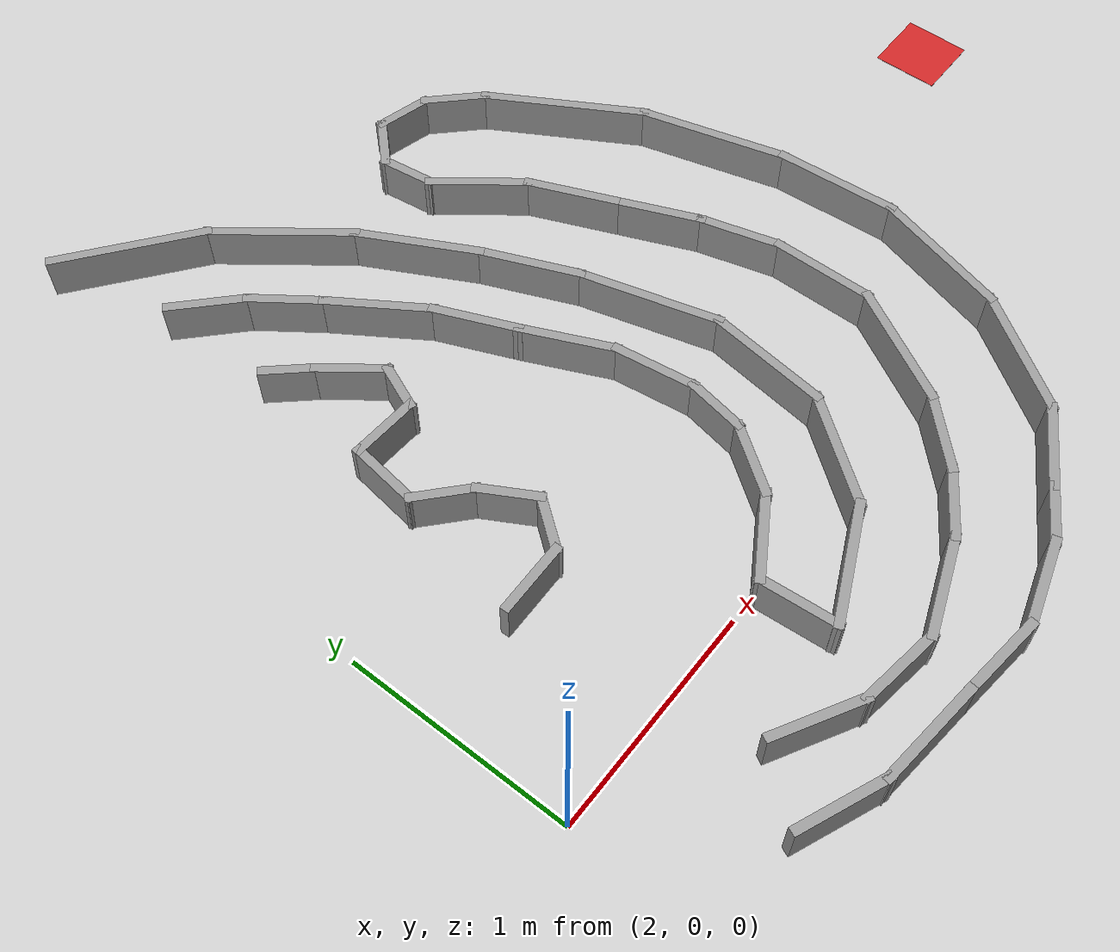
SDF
<sdf version="1.4">
 <world name="default">
  <model name="ground_plane">
   <static>1</static>
   <link name="link">
    <collision name="collision">
     <geometry><plane><normal>0 0 1</normal><size>100 100</size></plane></geometry>
     <surface><friction><ode><mu>100</mu><mu2>50</mu2></ode></friction></surface>
    </collision>
    <visual name="visual">
     <cast_shadows>0</cast_shadows>
     <geometry><plane><normal>0 0 1</normal><size>100 100</size></plane></geometry>
     <material>
      <script><uri>file://media/materials/scripts/gazebo.material</uri><name>Gazebo/Grey</name></script>
     </material>
    </visual>
    <velocity_decay><linear>0</linear><angular>0</angular></velocity_decay>
   </link>
  </model>
  <model name="thymio_maze_large">
   <link name="Wall_101">
    <collision name="Wall_101_Collision">
     <geometry><box><size>0.335749 0.04 0.2</size></box></geometry>
     <pose>0 0 0.1 0 -0 0</pose>
    </collision>
    <visual name="Wall_101_Visual">
     <pose>0 0 0.1 0 -0 0</pose>
     <geometry><box><size>0.335749 0.04 0.2</size></box></geometry>
     <material>
      <script><uri>file://media/materials/scripts/gazebo.material</uri><name>Gazebo/Grey</name></script>
     </material>
    </visual>
    <velocity_decay><linear>0</linear><angular>0</angular></velocity_decay>
    <pose>2.59958 0.63814 0 0 -0 0.02557</pose>
   </link>
   <link name="Wall_102">
    <collision name="Wall_102_Collision">
     <geometry><box><size>0.271621 0.04 0.2</size></box></geometry>
     <pose>0 0 0.1 0 -0 0</pose>
    </collision>
    <visual name="Wall_102_Visual">
     <pose>0 0 0.1 0 -0 0</pose>
     <geometry><box><size>0.271621 0.04 0.2</size></box></geometry>
     <material>
      <script><uri>file://media/materials/scripts/gazebo.material</uri><name>Gazebo/Grey</name></script>
     </material>
    </visual>
    <velocity_decay><linear>0</linear><angular>0</angular></velocity_decay>
    <pose>2.81792 0.733792 0 0 -0 0.916195</pose>
   </link>
   <link name="Wall_103">
    <collision name="Wall_103_Collision">
     <geometry><box><size>0.290702 0.04 0.2</size></box></geometry>
     <pose>0 0 0.1 0 -0 0</pose>
    </collision>
    <visual name="Wall_103_Visual">
     <pose>0 0 0.1 0 -0 0</pose>
     <geometry><box><size>0.290702 0.04 0.2</size></box></geometry>
     <material>
      <script><uri>file://media/materials/scripts/gazebo.material</uri><name>Gazebo/Grey</name></script>
     </material>
    </visual>
    <velocity_decay><linear>0</linear><angular>0</angular></velocity_decay>
    <pose>2.827 0.934926 0 0 -0 2.08302</pose>
   </link>
   <link name="Wall_104">
    <collision name="Wall_104_Collision">
     <geometry><box><size>0.293396 0.04 0.2</size></box></geometry>
     <pose>0 0 0.1 0 -0 0</pose>
    </collision>
    <visual name="Wall_104_Visual">
     <pose>0 0 0.1 0 -0 0</pose>
     <geometry><box><size>0.293396 0.04 0.2</size></box></geometry>
     <material>
      <script><uri>file://media/materials/scripts/gazebo.material</uri><name>Gazebo/Grey</name></script>
     </material>
    </visual>
    <velocity_decay><linear>0</linear><angular>0</angular></velocity_decay>
    <pose>2.67132 1.12915 0 0 -0 2.40792</pose>
   </link>
   <link name="Wall_105">
    <collision name="Wall_105_Collision">
     <geometry><box><size>0.335432 0.04 0.2</size></box></geometry>
     <pose>0 0 0.1 0 -0 0</pose>
    </collision>
    <visual name="Wall_105_Visual">
     <pose>0 0 0.1 0 -0 0</pose>
     <geometry><box><size>0.335432 0.04 0.2</size></box></geometry>
     <material>
      <script><uri>file://media/materials/scripts/gazebo.material</uri><name>Gazebo/Grey</name></script>
     </material>
    </visual>
    <velocity_decay><linear>0</linear><angular>0</angular></velocity_decay>
    <pose>2.59631 1.36024 0 0 -0 1.4399</pose>
   </link>
   <link name="Wall_106">
    <collision name="Wall_106_Collision">
     <geometry><box><size>0.320937 0.04 0.2</size></box></geometry>
     <pose>0 0 0.1 0 -0 0</pose>
    </collision>
    <visual name="Wall_106_Visual">
     <pose>0 0 0.1 0 -0 0</pose>
     <geometry><box><size>0.320937 0.04 0.2</size></box></geometry>
     <material>
      <script><uri>file://media/materials/scripts/gazebo.material</uri><name>Gazebo/Grey</name></script>
     </material>
    </visual>
    <velocity_decay><linear>0</linear><angular>0</angular></velocity_decay>
    <pose>2.75583 1.49919 0 0 0 -0.05102</pose>
   </link>
   <link name="Wall_107">
    <collision name="Wall_107_Collision">
     <geometry><box><size>0.236715 0.04 0.2</size></box></geometry>
     <pose>0 0 0.1 0 -0 0</pose>
    </collision>
    <visual name="Wall_107_Visual">
     <pose>0 0 0.1 0 -0 0</pose>
     <geometry><box><size>0.236715 0.04 0.2</size></box></geometry>
     <material>
      <script><uri>file://media/materials/scripts/gazebo.material</uri><name>Gazebo/Grey</name></script>
     </material>
    </visual>
    <velocity_decay><linear>0</linear><angular>0</angular></velocity_decay>
    <pose>2.93376 1.5829 0 0 -0 1.1781</pose>
   </link>
   <link name="Wall_108">
    <collision name="Wall_108_Collision">
     <geometry><box><size>0.330495 0.04 0.2</size></box></geometry>
     <pose>0 0 0.1 0 -0 0</pose>
    </collision>
    <visual name="Wall_108_Visual">
     <pose>0 0 0.1 0 -0 0</pose>
     <geometry><box><size>0.330495 0.04 0.2</size></box></geometry>
     <material>
      <script><uri>file://media/materials/scripts/gazebo.material</uri><name>Gazebo/Grey</name></script>
     </material>
    </visual>
    <velocity_decay><linear>0</linear><angular>0</angular></velocity_decay>
    <pose>2.88298 1.789 0 0 -0 2.2253</pose>
   </link>
   <link name="Wall_109">
    <collision name="Wall_109_Collision">
     <geometry><box><size>0.250362 0.04 0.2</size></box></geometry>
     <pose>0 0 0.1 0 -0 0</pose>
    </collision>
    <visual name="Wall_109_Visual">
     <pose>0 0 0.1 0 -0 0</pose>
     <geometry><box><size>0.250362 0.04 0.2</size></box></geometry>
     <material>
      <script><uri>file://media/materials/scripts/gazebo.material</uri><name>Gazebo/Grey</name></script>
     </material>
    </visual>
    <velocity_decay><linear>0</linear><angular>0</angular></velocity_decay>
    <pose>2.72372 1.98215 0 0 -0 2.30861</pose>
   </link>
   <link name="Wall_12">
    <collision name="Wall_12_Collision">
     <geometry><box><size>0.696371 0.04 0.2</size></box></geometry>
     <pose>0 0 0.1 0 -0 0</pose>
    </collision>
    <visual name="Wall_12_Visual">
     <pose>0 0 0.1 0 -0 0</pose>
     <geometry><box><size>0.696371 0.04 0.2</size></box></geometry>
     <material>
      <script><uri>file://media/materials/scripts/gazebo.material</uri><name>Gazebo/Grey</name></script>
     </material>
    </visual>
    <velocity_decay><linear>0</linear><angular>0</angular></velocity_decay>
    <pose>2.76942 2.94482 0 0 0 -0.654498</pose>
   </link>
   <link name="Wall_13">
    <collision name="Wall_13_Collision">
     <geometry><box><size>0.665189 0.04 0.2</size></box></geometry>
     <pose>0 0 0.1 0 -0 0</pose>
    </collision>
    <visual name="Wall_13_Visual">
     <pose>0 0 0.1 0 -0 0</pose>
     <geometry><box><size>0.665189 0.04 0.2</size></box></geometry>
     <material>
      <script><uri>file://media/materials/scripts/gazebo.material</uri><name>Gazebo/Grey</name></script>
     </material>
    </visual>
    <velocity_decay><linear>0</linear><angular>0</angular></velocity_decay>
    <pose>3.22022 2.49687 0 0 0 -0.916298</pose>
   </link>
   <link name="Wall_14">
    <collision name="Wall_14_Collision">
     <geometry><box><size>0.577995 0.04 0.2</size></box></geometry>
     <pose>0 0 0.1 0 -0 0</pose>
    </collision>
    <visual name="Wall_14_Visual">
     <pose>0 0 0.1 0 -0 0</pose>
     <geometry><box><size>0.577995 0.04 0.2</size></box></geometry>
     <material>
      <script><uri>file://media/materials/scripts/gazebo.material</uri><name>Gazebo/Grey</name></script>
     </material>
    </visual>
    <velocity_decay><linear>0</linear><angular>0</angular></velocity_decay>
    <pose>3.53507 2.01022 0 0 0 -1.08988</pose>
   </link>
   <link name="Wall_15">
    <collision name="Wall_15_Collision">
     <geometry><box><size>0.479955 0.04 0.2</size></box></geometry>
     <pose>0 0 0.1 0 -0 0</pose>
    </collision>
    <visual name="Wall_15_Visual">
     <pose>0 0 0.1 0 -0 0</pose>
     <geometry><box><size>0.479955 0.04 0.2</size></box></geometry>
     <material>
      <script><uri>file://media/materials/scripts/gazebo.material</uri><name>Gazebo/Grey</name></script>
     </material>
    </visual>
    <velocity_decay><linear>0</linear><angular>0</angular></velocity_decay>
    <pose>3.74369 1.5685 0 0 0 -1.1781</pose>
   </link>
   <link name="Wall_16">
    <collision name="Wall_16_Collision">
     <geometry><box><size>0.65013 0.04 0.2</size></box></geometry>
     <pose>0 0 0.1 0 -0 0</pose>
    </collision>
    <visual name="Wall_16_Visual">
     <pose>0 0 0.1 0 -0 0</pose>
     <geometry><box><size>0.65013 0.04 0.2</size></box></geometry>
     <material>
      <script><uri>file://media/materials/scripts/gazebo.material</uri><name>Gazebo/Grey</name></script>
     </material>
    </visual>
    <velocity_decay><linear>0</linear><angular>0</angular></velocity_decay>
    <pose>3.90683 1.0706 0 0 0 -1.309</pose>
   </link>
   <link name="Wall_17">
    <collision name="Wall_17_Collision">
     <geometry><box><size>0.56326 0.04 0.2</size></box></geometry>
     <pose>0 0 0.1 0 -0 0</pose>
    </collision>
    <visual name="Wall_17_Visual">
     <pose>0 0 0.1 0 -0 0</pose>
     <geometry><box><size>0.56326 0.04 0.2</size></box></geometry>
     <material>
      <script><uri>file://media/materials/scripts/gazebo.material</uri><name>Gazebo/Grey</name></script>
     </material>
    </visual>
    <velocity_decay><linear>0</linear><angular>0</angular></velocity_decay>
    <pose>3.95161 0.516304 0 0 0 -1.7017</pose>
   </link>
   <link name="Wall_18">
    <collision name="Wall_18_Collision">
     <geometry><box><size>0.539122 0.04 0.2</size></box></geometry>
     <pose>0 0 0.1 0 -0 0</pose>
    </collision>
    <visual name="Wall_18_Visual">
     <pose>0 0 0.1 0 -0 0</pose>
     <geometry><box><size>0.539122 0.04 0.2</size></box></geometry>
     <material>
      <script><uri>file://media/materials/scripts/gazebo.material</uri><name>Gazebo/Grey</name></script>
     </material>
    </visual>
    <velocity_decay><linear>0</linear><angular>0</angular></velocity_decay>
    <pose>3.76444 0.05951 0 0 0 -2.23066</pose>
   </link>
   <link name="Wall_19">
    <collision name="Wall_19_Collision">
     <geometry><box><size>0.559261 0.04 0.2</size></box></geometry>
     <pose>0 0 0.1 0 -0 0</pose>
    </collision>
    <visual name="Wall_19_Visual">
     <pose>0 0 0.1 0 -0 0</pose>
     <geometry><box><size>0.559261 0.04 0.2</size></box></geometry>
     <material>
      <script><uri>file://media/materials/scripts/gazebo.material</uri><name>Gazebo/Grey</name></script>
     </material>
    </visual>
    <velocity_decay><linear>0</linear><angular>0</angular></velocity_decay>
    <pose>3.3743 -0.243309 0 0 0 -2.72252</pose>
   </link>
   <link name="Wall_20">
    <collision name="Wall_20_Collision">
     <geometry><box><size>0.368009 0.04 0.2</size></box></geometry>
     <pose>0 0 0.1 0 -0 0</pose>
    </collision>
    <visual name="Wall_20_Visual">
     <pose>0 0 0.1 0 -0 0</pose>
     <geometry><box><size>0.368009 0.04 0.2</size></box></geometry>
     <material>
      <script><uri>file://media/materials/scripts/gazebo.material</uri><name>Gazebo/Grey</name></script>
     </material>
    </visual>
    <velocity_decay><linear>0</linear><angular>0</angular></velocity_decay>
    <pose>3.12477 -0.18542 0 0 -0 1.64626</pose>
   </link>
   <link name="Wall_21">
    <collision name="Wall_21_Collision">
     <geometry><box><size>0.412007 0.04 0.2</size></box></geometry>
     <pose>0 0 0.1 0 -0 0</pose>
    </collision>
    <visual name="Wall_21_Visual">
     <pose>0 0 0.1 0 -0 0</pose>
     <geometry><box><size>0.412007 0.04 0.2</size></box></geometry>
     <material>
      <script><uri>file://media/materials/scripts/gazebo.material</uri><name>Gazebo/Grey</name></script>
     </material>
    </visual>
    <velocity_decay><linear>0</linear><angular>0</angular></velocity_decay>
    <pose>3.27176 0.074045 0 0 -0 0.541856</pose>
   </link>
   <link name="Wall_22">
    <collision name="Wall_22_Collision">
     <geometry><box><size>0.355008 0.04 0.2</size></box></geometry>
     <pose>0 0 0.1 0 -0 0</pose>
    </collision>
    <visual name="Wall_22_Visual">
     <pose>0 0 0.1 0 -0 0</pose>
     <geometry><box><size>0.355008 0.04 0.2</size></box></geometry>
     <material>
      <script><uri>file://media/materials/scripts/gazebo.material</uri><name>Gazebo/Grey</name></script>
     </material>
    </visual>
    <velocity_decay><linear>0</linear><angular>0</angular></velocity_decay>
    <pose>3.5239 0.29725 0 0 -0 0.94091</pose>
   </link>
   <link name="Wall_23">
    <collision name="Wall_23_Collision">
     <geometry><box><size>0.291039 0.04 0.2</size></box></geometry>
     <pose>0 0 0.1 0 -0 0</pose>
    </collision>
    <visual name="Wall_23_Visual">
     <pose>0 0 0.1 0 -0 0</pose>
     <geometry><box><size>0.291039 0.04 0.2</size></box></geometry>
     <material>
      <script><uri>file://media/materials/scripts/gazebo.material</uri><name>Gazebo/Grey</name></script>
     </material>
    </visual>
    <velocity_decay><linear>0</linear><angular>0</angular></velocity_decay>
    <pose>3.63941 0.547973 0 0 -0 1.38871</pose>
   </link>
   <link name="Wall_24">
    <collision name="Wall_24_Collision">
     <geometry><box><size>0.388273 0.04 0.2</size></box></geometry>
     <pose>0 0 0.1 0 -0 0</pose>
    </collision>
    <visual name="Wall_24_Visual">
     <pose>0 0 0.1 0 -0 0</pose>
     <geometry><box><size>0.388273 0.04 0.2</size></box></geometry>
     <material>
      <script><uri>file://media/materials/scripts/gazebo.material</uri><name>Gazebo/Grey</name></script>
     </material>
    </visual>
    <velocity_decay><linear>0</linear><angular>0</angular></velocity_decay>
    <pose>3.63941 0.844064 0 0 -0 1.7017</pose>
   </link>
   <link name="Wall_25">
    <collision name="Wall_25_Collision">
     <geometry><box><size>0.449048 0.04 0.2</size></box></geometry>
     <pose>0 0 0.1 0 -0 0</pose>
    </collision>
    <visual name="Wall_25_Visual">
     <pose>0 0 0.1 0 -0 0</pose>
     <geometry><box><size>0.449048 0.04 0.2</size></box></geometry>
     <material>
      <script><uri>file://media/materials/scripts/gazebo.material</uri><name>Gazebo/Grey</name></script>
     </material>
    </visual>
    <velocity_decay><linear>0</linear><angular>0</angular></velocity_decay>
    <pose>3.53342 1.20363 0 0 -0 1.98985</pose>
   </link>
   <link name="Wall_26">
    <collision name="Wall_26_Collision">
     <geometry><box><size>0.405797 0.04 0.2</size></box></geometry>
     <pose>0 0 0.1 0 -0 0</pose>
    </collision>
    <visual name="Wall_26_Visual">
     <pose>0 0 0.1 0 -0 0</pose>
     <geometry><box><size>0.405797 0.04 0.2</size></box></geometry>
     <material>
      <script><uri>file://media/materials/scripts/gazebo.material</uri><name>Gazebo/Grey</name></script>
     </material>
    </visual>
    <velocity_decay><linear>0</linear><angular>0</angular></velocity_decay>
    <pose>3.38016 1.55953 0 0 -0 1.96349</pose>
   </link>
   <link name="Wall_27">
    <collision name="Wall_27_Collision">
     <geometry><box><size>0.493405 0.04 0.2</size></box></geometry>
     <pose>0 0 0.1 0 -0 0</pose>
    </collision>
    <visual name="Wall_27_Visual">
     <pose>0 0 0.1 0 -0 0</pose>
     <geometry><box><size>0.493405 0.04 0.2</size></box></geometry>
     <material>
      <script><uri>file://media/materials/scripts/gazebo.material</uri><name>Gazebo/Grey</name></script>
     </material>
    </visual>
    <velocity_decay><linear>0</linear><angular>0</angular></velocity_decay>
    <pose>3.18649 1.9185 0 0 -0 2.14783</pose>
   </link>
   <link name="Wall_28">
    <collision name="Wall_28_Collision">
     <geometry><box><size>0.352834 0.04 0.2</size></box></geometry>
     <pose>0 0 0.1 0 -0 0</pose>
    </collision>
    <visual name="Wall_28_Visual">
     <pose>0 0 0.1 0 -0 0</pose>
     <geometry><box><size>0.352834 0.04 0.2</size></box></geometry>
     <material>
      <script><uri>file://media/materials/scripts/gazebo.material</uri><name>Gazebo/Grey</name></script>
     </material>
    </visual>
    <velocity_decay><linear>0</linear><angular>0</angular></velocity_decay>
    <pose>2.97082 2.235 0 0 -0 2.19959</pose>
   </link>
   <link name="Wall_29">
    <collision name="Wall_29_Collision">
     <geometry><box><size>0.36669 0.04 0.2</size></box></geometry>
     <pose>0 0 0.1 0 -0 0</pose>
    </collision>
    <visual name="Wall_29_Visual">
     <pose>0 0 0.1 0 -0 0</pose>
     <geometry><box><size>0.36669 0.04 0.2</size></box></geometry>
     <material>
      <script><uri>file://media/materials/scripts/gazebo.material</uri><name>Gazebo/Grey</name></script>
     </material>
    </visual>
    <velocity_decay><linear>0</linear><angular>0</angular></velocity_decay>
    <pose>2.7604 2.47402 0 0 -0 2.38174</pose>
   </link>
   <link name="Wall_61">
    <collision name="Wall_61_Collision">
     <geometry><box><size>0.417641 0.04 0.2</size></box></geometry>
     <pose>0 0 0.1 0 -0 0</pose>
    </collision>
    <visual name="Wall_61_Visual">
     <pose>0 0 0.1 0 -0 0</pose>
     <geometry><box><size>0.417641 0.04 0.2</size></box></geometry>
     <material>
      <script><uri>file://media/materials/scripts/gazebo.material</uri><name>Gazebo/Grey</name></script>
     </material>
    </visual>
    <velocity_decay><linear>0</linear><angular>0</angular></velocity_decay>
    <pose>2.58408 -0.72084 0 0 0 -0.400028</pose>
   </link>
   <link name="Wall_62">
    <collision name="Wall_62_Collision">
     <geometry><box><size>0.497603 0.04 0.2</size></box></geometry>
     <pose>0 0 0.1 0 -0 0</pose>
    </collision>
    <visual name="Wall_62_Visual">
     <pose>0 0 0.1 0 -0 0</pose>
     <geometry><box><size>0.497603 0.04 0.2</size></box></geometry>
     <material>
      <script><uri>file://media/materials/scripts/gazebo.material</uri><name>Gazebo/Grey</name></script>
     </material>
    </visual>
    <velocity_decay><linear>0</linear><angular>0</angular></velocity_decay>
    <pose>2.98522 -0.821218 0 0 0 -0.117591</pose>
   </link>
   <link name="Wall_63">
    <collision name="Wall_63_Collision">
     <geometry><box><size>0.399397 0.04 0.2</size></box></geometry>
     <pose>0 0 0.1 0 -0 0</pose>
    </collision>
    <visual name="Wall_63_Visual">
     <pose>0 0 0.1 0 -0 0</pose>
     <geometry><box><size>0.399397 0.04 0.2</size></box></geometry>
     <material>
      <script><uri>file://media/materials/scripts/gazebo.material</uri><name>Gazebo/Grey</name></script>
     </material>
    </visual>
    <velocity_decay><linear>0</linear><angular>0</angular></velocity_decay>
    <pose>3.3907 -0.870745 0 0 0 -0.126573</pose>
   </link>
   <link name="Wall_64">
    <collision name="Wall_64_Collision">
     <geometry><box><size>0.409355 0.04 0.2</size></box></geometry>
     <pose>0 0 0.1 0 -0 0</pose>
    </collision>
    <visual name="Wall_64_Visual">
     <pose>0 0 0.1 0 -0 0</pose>
     <geometry><box><size>0.409355 0.04 0.2</size></box></geometry>
     <material>
      <script><uri>file://media/materials/scripts/gazebo.material</uri><name>Gazebo/Grey</name></script>
     </material>
    </visual>
    <velocity_decay><linear>0</linear><angular>0</angular></velocity_decay>
    <pose>3.74711 -0.84477 0 0 -0 0.266634</pose>
   </link>
   <link name="Wall_65">
    <collision name="Wall_65_Collision">
     <geometry><box><size>0.280122 0.04 0.2</size></box></geometry>
     <pose>0 0 0.1 0 -0 0</pose>
    </collision>
    <visual name="Wall_65_Visual">
     <pose>0 0 0.1 0 -0 0</pose>
     <geometry><box><size>0.280122 0.04 0.2</size></box></geometry>
     <material>
      <script><uri>file://media/materials/scripts/gazebo.material</uri><name>Gazebo/Grey</name></script>
     </material>
    </visual>
    <velocity_decay><linear>0</linear><angular>0</angular></velocity_decay>
    <pose>4.02924 -0.736079 0 0 -0 0.523599</pose>
   </link>
   <link name="Wall_66">
    <collision name="Wall_66_Collision">
     <geometry><box><size>0.405983 0.04 0.2</size></box></geometry>
     <pose>0 0 0.1 0 -0 0</pose>
    </collision>
    <visual name="Wall_66_Visual">
     <pose>0 0 0.1 0 -0 0</pose>
     <geometry><box><size>0.405983 0.04 0.2</size></box></geometry>
     <material>
      <script><uri>file://media/materials/scripts/gazebo.material</uri><name>Gazebo/Grey</name></script>
     </material>
    </visual>
    <velocity_decay><linear>0</linear><angular>0</angular></velocity_decay>
    <pose>4.29169 -0.584553 0 0 -0 0.523599</pose>
   </link>
   <link name="Wall_67">
    <collision name="Wall_67_Collision">
     <geometry><box><size>0.596122 0.04 0.2</size></box></geometry>
     <pose>0 0 0.1 0 -0 0</pose>
    </collision>
    <visual name="Wall_67_Visual">
     <pose>0 0 0.1 0 -0 0</pose>
     <geometry><box><size>0.596122 0.04 0.2</size></box></geometry>
     <material>
      <script><uri>file://media/materials/scripts/gazebo.material</uri><name>Gazebo/Grey</name></script>
     </material>
    </visual>
    <velocity_decay><linear>0</linear><angular>0</angular></velocity_decay>
    <pose>4.60886 -0.26473 0 0 -0 0.963407</pose>
   </link>
   <link name="Wall_68">
    <collision name="Wall_68_Collision">
     <geometry><box><size>0.639024 0.04 0.2</size></box></geometry>
     <pose>0 0 0.1 0 -0 0</pose>
    </collision>
    <visual name="Wall_68_Visual">
     <pose>0 0 0.1 0 -0 0</pose>
     <geometry><box><size>0.639024 0.04 0.2</size></box></geometry>
     <material>
      <script><uri>file://media/materials/scripts/gazebo.material</uri><name>Gazebo/Grey</name></script>
     </material>
    </visual>
    <velocity_decay><linear>0</linear><angular>0</angular></velocity_decay>
    <pose>4.8486 0.251937 0 0 -0 1.2968</pose>
   </link>
   <link name="Wall_69">
    <collision name="Wall_69_Collision">
     <geometry><box><size>0.571035 0.04 0.2</size></box></geometry>
     <pose>0 0 0.1 0 -0 0</pose>
    </collision>
    <visual name="Wall_69_Visual">
     <pose>0 0 0.1 0 -0 0</pose>
     <geometry><box><size>0.571035 0.04 0.2</size></box></geometry>
     <material>
      <script><uri>file://media/materials/scripts/gazebo.material</uri><name>Gazebo/Grey</name></script>
     </material>
    </visual>
    <velocity_decay><linear>0</linear><angular>0</angular></velocity_decay>
    <pose>4.91228 0.804926 0 0 -0 1.63631</pose>
   </link>
   <link name="Wall_70">
    <collision name="Wall_70_Collision">
     <geometry><box><size>0.697276 0.04 0.2</size></box></geometry>
     <pose>0 0 0.1 0 -0 0</pose>
    </collision>
    <visual name="Wall_70_Visual">
     <pose>0 0 0.1 0 -0 0</pose>
     <geometry><box><size>0.697276 0.04 0.2</size></box></geometry>
     <material>
      <script><uri>file://media/materials/scripts/gazebo.material</uri><name>Gazebo/Grey</name></script>
     </material>
    </visual>
    <velocity_decay><linear>0</linear><angular>0</angular></velocity_decay>
    <pose>4.80986 1.38702 0 0 -0 1.8326</pose>
   </link>
   <link name="Wall_71">
    <collision name="Wall_71_Collision">
     <geometry><box><size>0.758261 0.04 0.2</size></box></geometry>
     <pose>0 0 0.1 0 -0 0</pose>
    </collision>
    <visual name="Wall_71_Visual">
     <pose>0 0 0.1 0 -0 0</pose>
     <geometry><box><size>0.758261 0.04 0.2</size></box></geometry>
     <material>
      <script><uri>file://media/materials/scripts/gazebo.material</uri><name>Gazebo/Grey</name></script>
     </material>
    </visual>
    <velocity_decay><linear>0</linear><angular>0</angular></velocity_decay>
    <pose>4.54523 2.01547 0 0 -0 2.0944</pose>
   </link>
   <link name="Wall_72">
    <collision name="Wall_72_Collision">
     <geometry><box><size>0.311999 0.04 0.2</size></box></geometry>
     <pose>0 0 0.1 0 -0 0</pose>
    </collision>
    <visual name="Wall_72_Visual">
     <pose>0 0 0.1 0 -0 0</pose>
     <geometry><box><size>0.311999 0.04 0.2</size></box></geometry>
     <material>
      <script><uri>file://media/materials/scripts/gazebo.material</uri><name>Gazebo/Grey</name></script>
     </material>
    </visual>
    <velocity_decay><linear>0</linear><angular>0</angular></velocity_decay>
    <pose>4.2695 2.42265 0 0 -0 2.35619</pose>
   </link>
   <link name="Wall_73">
    <collision name="Wall_73_Collision">
     <geometry><box><size>0.273627 0.04 0.2</size></box></geometry>
     <pose>0 0 0.1 0 -0 0</pose>
    </collision>
    <visual name="Wall_73_Visual">
     <pose>0 0 0.1 0 -0 0</pose>
     <geometry><box><size>0.273627 0.04 0.2</size></box></geometry>
     <material>
      <script><uri>file://media/materials/scripts/gazebo.material</uri><name>Gazebo/Grey</name></script>
     </material>
    </visual>
    <velocity_decay><linear>0</linear><angular>0</angular></velocity_decay>
    <pose>4.05999 2.54707 0 0 -0 2.89729</pose>
   </link>
   <link name="Wall_74">
    <collision name="Wall_74_Collision">
     <geometry><box><size>0.260603 0.04 0.2</size></box></geometry>
     <pose>0 0 0.1 0 -0 0</pose>
    </collision>
    <visual name="Wall_74_Visual">
     <pose>0 0 0.1 0 -0 0</pose>
     <geometry><box><size>0.260603 0.04 0.2</size></box></geometry>
     <material>
      <script><uri>file://media/materials/scripts/gazebo.material</uri><name>Gazebo/Grey</name></script>
     </material>
    </visual>
    <velocity_decay><linear>0</linear><angular>0</angular></velocity_decay>
    <pose>3.86995 2.49606 0 0 0 -2.33967</pose>
   </link>
   <link name="Wall_75">
    <collision name="Wall_75_Collision">
     <geometry><box><size>0.268598 0.04 0.2</size></box></geometry>
     <pose>0 0 0.1 0 -0 0</pose>
    </collision>
    <visual name="Wall_75_Visual">
     <pose>0 0 0.1 0 -0 0</pose>
     <geometry><box><size>0.268598 0.04 0.2</size></box></geometry>
     <material>
      <script><uri>file://media/materials/scripts/gazebo.material</uri><name>Gazebo/Grey</name></script>
     </material>
    </visual>
    <velocity_decay><linear>0</linear><angular>0</angular></velocity_decay>
    <pose>3.80824 2.30347 0 0 0 -1.43931</pose>
   </link>
   <link name="Wall_76">
    <collision name="Wall_76_Collision">
     <geometry><box><size>0.468968 0.04 0.2</size></box></geometry>
     <pose>0 0 0.1 0 -0 0</pose>
    </collision>
    <visual name="Wall_76_Visual">
     <pose>0 0 0.1 0 -0 0</pose>
     <geometry><box><size>0.468968 0.04 0.2</size></box></geometry>
     <material>
      <script><uri>file://media/materials/scripts/gazebo.material</uri><name>Gazebo/Grey</name></script>
     </material>
    </visual>
    <velocity_decay><linear>0</linear><angular>0</angular></velocity_decay>
    <pose>3.9538 2.02 0 0 0 -0.916298</pose>
   </link>
   <link name="Wall_77">
    <collision name="Wall_77_Collision">
     <geometry><box><size>0.42604 0.04 0.2</size></box></geometry>
     <pose>0 0 0.1 0 -0 0</pose>
    </collision>
    <visual name="Wall_77_Visual">
     <pose>0 0 0.1 0 -0 0</pose>
     <geometry><box><size>0.42604 0.04 0.2</size></box></geometry>
     <material>
      <script><uri>file://media/materials/scripts/gazebo.material</uri><name>Gazebo/Grey</name></script>
     </material>
    </visual>
    <velocity_decay><linear>0</linear><angular>0</angular></velocity_decay>
    <pose>4.15823 1.67151 0 0 0 -1.1781</pose>
   </link>
   <link name="Wall_78">
    <collision name="Wall_78_Collision">
     <geometry><box><size>0.417829 0.04 0.2</size></box></geometry>
     <pose>0 0 0.1 0 -0 0</pose>
    </collision>
    <visual name="Wall_78_Visual">
     <pose>0 0 0.1 0 -0 0</pose>
     <geometry><box><size>0.417829 0.04 0.2</size></box></geometry>
     <material>
      <script><uri>file://media/materials/scripts/gazebo.material</uri><name>Gazebo/Grey</name></script>
     </material>
    </visual>
    <velocity_decay><linear>0</linear><angular>0</angular></velocity_decay>
    <pose>4.30439 1.31865 0 0 0 -1.1781</pose>
   </link>
   <link name="Wall_79">
    <collision name="Wall_79_Collision">
     <geometry><box><size>0.391414 0.04 0.2</size></box></geometry>
     <pose>0 0 0.1 0 -0 0</pose>
    </collision>
    <visual name="Wall_79_Visual">
     <pose>0 0 0.1 0 -0 0</pose>
     <geometry><box><size>0.391414 0.04 0.2</size></box></geometry>
     <material>
      <script><uri>file://media/materials/scripts/gazebo.material</uri><name>Gazebo/Grey</name></script>
     </material>
    </visual>
    <velocity_decay><linear>0</linear><angular>0</angular></velocity_decay>
    <pose>4.42216 0.974393 0 0 0 -1.309</pose>
   </link>
   <link name="Wall_80">
    <collision name="Wall_80_Collision">
     <geometry><box><size>0.475343 0.04 0.2</size></box></geometry>
     <pose>0 0 0.1 0 -0 0</pose>
    </collision>
    <visual name="Wall_80_Visual">
     <pose>0 0 0.1 0 -0 0</pose>
     <geometry><box><size>0.475343 0.04 0.2</size></box></geometry>
     <material>
      <script><uri>file://media/materials/scripts/gazebo.material</uri><name>Gazebo/Grey</name></script>
     </material>
    </visual>
    <velocity_decay><linear>0</linear><angular>0</angular></velocity_decay>
    <pose>4.46764 0.587002 0 0 0 -1.5708</pose>
   </link>
   <link name="Wall_81">
    <collision name="Wall_81_Collision">
     <geometry><box><size>0.576301 0.04 0.2</size></box></geometry>
     <pose>0 0 0.1 0 -0 0</pose>
    </collision>
    <visual name="Wall_81_Visual">
     <pose>0 0 0.1 0 -0 0</pose>
     <geometry><box><size>0.576301 0.04 0.2</size></box></geometry>
     <material>
      <script><uri>file://media/materials/scripts/gazebo.material</uri><name>Gazebo/Grey</name></script>
     </material>
    </visual>
    <velocity_decay><linear>0</linear><angular>0</angular></velocity_decay>
    <pose>4.33476 0.136419 0 0 0 -2.08926</pose>
   </link>
   <link name="Wall_82">
    <collision name="Wall_82_Collision">
     <geometry><box><size>0.376384 0.04 0.2</size></box></geometry>
     <pose>0 0 0.1 0 -0 0</pose>
    </collision>
    <visual name="Wall_82_Visual">
     <pose>0 0 0.1 0 -0 0</pose>
     <geometry><box><size>0.376384 0.04 0.2</size></box></geometry>
     <material>
      <script><uri>file://media/materials/scripts/gazebo.material</uri><name>Gazebo/Grey</name></script>
     </material>
    </visual>
    <velocity_decay><linear>0</linear><angular>0</angular></velocity_decay>
    <pose>4.08153 -0.213991 0 0 0 -2.36814</pose>
   </link>
   <link name="Wall_83">
    <collision name="Wall_83_Collision">
     <geometry><box><size>0.338155 0.04 0.2</size></box></geometry>
     <pose>0 0 0.1 0 -0 0</pose>
    </collision>
    <visual name="Wall_83_Visual">
     <pose>0 0 0.1 0 -0 0</pose>
     <geometry><box><size>0.338155 0.04 0.2</size></box></geometry>
     <material>
      <script><uri>file://media/materials/scripts/gazebo.material</uri><name>Gazebo/Grey</name></script>
     </material>
    </visual>
    <velocity_decay><linear>0</linear><angular>0</angular></velocity_decay>
    <pose>3.83578 -0.412082 0 0 0 -2.57045</pose>
   </link>
   <link name="Wall_84">
    <collision name="Wall_84_Collision">
     <geometry><box><size>0.466778 0.04 0.2</size></box></geometry>
     <pose>0 0 0.1 0 -0 0</pose>
    </collision>
    <visual name="Wall_84_Visual">
     <pose>0 0 0.1 0 -0 0</pose>
     <geometry><box><size>0.466778 0.04 0.2</size></box></geometry>
     <material>
      <script><uri>file://media/materials/scripts/gazebo.material</uri><name>Gazebo/Grey</name></script>
     </material>
    </visual>
    <velocity_decay><linear>0</linear><angular>0</angular></velocity_decay>
    <pose>3.50924 -0.563989 0 0 0 -2.80083</pose>
   </link>
   <link name="Wall_85">
    <collision name="Wall_85_Collision">
     <geometry><box><size>0.392696 0.04 0.2</size></box></geometry>
     <pose>0 0 0.1 0 -0 0</pose>
    </collision>
    <visual name="Wall_85_Visual">
     <pose>0 0 0.1 0 -0 0</pose>
     <geometry><box><size>0.392696 0.04 0.2</size></box></geometry>
     <material>
      <script><uri>file://media/materials/scripts/gazebo.material</uri><name>Gazebo/Grey</name></script>
     </material>
    </visual>
    <velocity_decay><linear>0</linear><angular>0</angular></velocity_decay>
    <pose>3.13388 -0.608097 0 0 -0 2.98669</pose>
   </link>
   <link name="Wall_86">
    <collision name="Wall_86_Collision">
     <geometry><box><size>0.422466 0.04 0.2</size></box></geometry>
     <pose>0 0 0.1 0 -0 0</pose>
    </collision>
    <visual name="Wall_86_Visual">
     <pose>0 0 0.1 0 -0 0</pose>
     <geometry><box><size>0.422466 0.04 0.2</size></box></geometry>
     <material>
      <script><uri>file://media/materials/scripts/gazebo.material</uri><name>Gazebo/Grey</name></script>
     </material>
    </visual>
    <velocity_decay><linear>0</linear><angular>0</angular></velocity_decay>
    <pose>2.79323 -0.486687 0 0 -0 2.62651</pose>
   </link>
   <static>1</static>
  </model>
  <model name="target">
   <static>1</static>
   <pose>6 1 0 0 -0 0</pose>
   <link name="pose">
    <inertial>
     <mass>1</mass>
     <inertia><ixx>1</ixx><ixy>0</ixy><ixz>0</ixz><iyy>1</iyy><iyz>0</iyz><izz>1</izz></inertia>
    </inertial>
    <collision name="collision"><geometry><box><size>0.30 0.30 0.002</size></box></geometry></collision>
    <visual name="visual">
     <geometry><box><size>0.30 0.30 0.002</size></box></geometry>
     <material>
      <script><uri>file://media/materials/scripts/gazebo.material</uri><name>Gazebo/Red</name></script>
     </material>
    </visual>
    <velocity_decay><linear>0</linear><angular>0</angular></velocity_decay>
   </link>
   <static>0</static>
  </model>
 </world>
</sdf>
